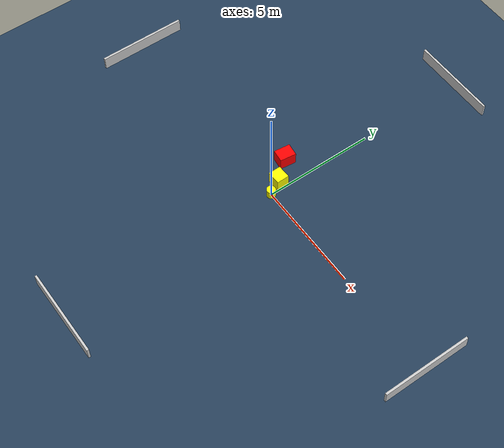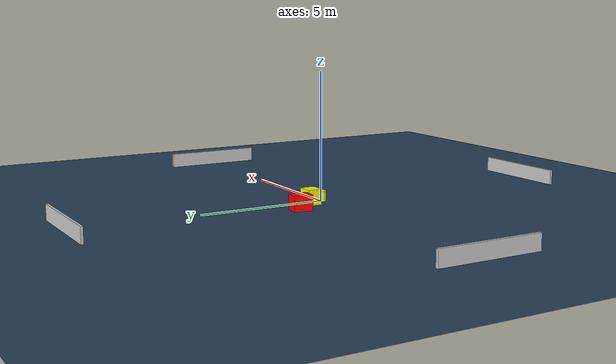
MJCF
<?xml version="1.0" ?>
<mujoco model="generated_environment">
  <option timestep="0.01" integrator="RK4" cone="elliptic"/>
  <default>
    <geom density="1"/>
  </default>
  <asset>
    <texture builtin="gradient" height="3072" name="skybox" rgb1="0.3 0.5 0.7" rgb2="0 0 0" type="skybox" width="512"/>
    <texture builtin="checker" height="300" name="groundplane" rgb1="0.2 0.3 0.4" rgb2="0.1 0.2 0.3" type="2d" width="300"/>
    <material name="groundplane" reflectance="0.2" texrepeat="5 5" texture="groundplane"/>
  </asset>
  <worldbody>
    <light dir="0 0 -1" directional="true" pos="0 0 1.5"/>
    <geom condim="3" friction="0.5 0.005 0.001" material="groundplane" name="floor" pos="0 0 0" size="0 0 0.05" type="plane"/>
    <body name="walls">
      <geom name="wall_1" condim="4" pos="-10.0 0.0 0.3" rgba="0.800000011920929 0.800000011920929 0.800000011920929 1.0" size="0.05 2.0 0.3" type="box"/>
      <geom name="wall_2" condim="4" pos="10.0 0.0 0.3" rgba="0.800000011920929 0.800000011920929 0.800000011920929 1.0" size="0.05 2.0 0.3" type="box"/>
      <geom name="wall_3" condim="4" pos="0.0 -10.0 0.3" rgba="0.800000011920929 0.800000011920929 0.800000011920929 1.0" size="2.0 0.05 0.3" type="box"/>
      <geom name="wall_4" condim="4" pos="0.0 10.0 0.3" rgba="0.800000011920929 0.800000011920929 0.800000011920929 1.0" size="2.0 0.05 0.3" type="box"/>
    </body>
    <body name="robot">
      <joint name="joint_x" type="slide" pos="0 0 0" axis="1 0 0"/>
      <joint name="joint_y" type="slide" pos="0 0 0" axis="0 1 0"/>
      <geom name="robot" type="cylinder" pos="0.0 0.0 0.2" size="0.2 0.2 0.0" mass="5.0" friction="1.0 0.005 0.0001" condim="4" rgba="1.0 1.0 0.0 1.0"/>
    </body>
    <body name="obstacle_1_movable">
      <geom name="obstacle_1_movable" condim="4" pos="-0.30903774414371493 0.6151800985587516 0.3" euler="0 0 271.0187804135265" friction="0.0 0.005 0.001" rgba="1.0 1.0 0.0 1.0" size="0.2818148707916339 0.3026091353320789 0.3" type="box" mass="0.1"/>
      <joint type="free"/>
    </body>
    <body name="obstacle_2_static">
      <geom name="obstacle_2_static" condim="4" pos="-1.0751775630550489 1.499692448395923 0.3" euler="0 0 263.2139622627852" friction="0.0 0.005 0.001" rgba="1.0 0.0 0.0 1.0" size="0.36736492138631993 0.2855544696073241 0.3" type="box"/>
    </body>
  </worldbody>
  <actuator>
    <motor name="actuator_x" joint="joint_x" gear="1" ctrlrange="-1 1"/>
    <motor name="actuator_y" joint="joint_y" gear="1" ctrlrange="-1 1"/>
  </actuator>
</mujoco>
